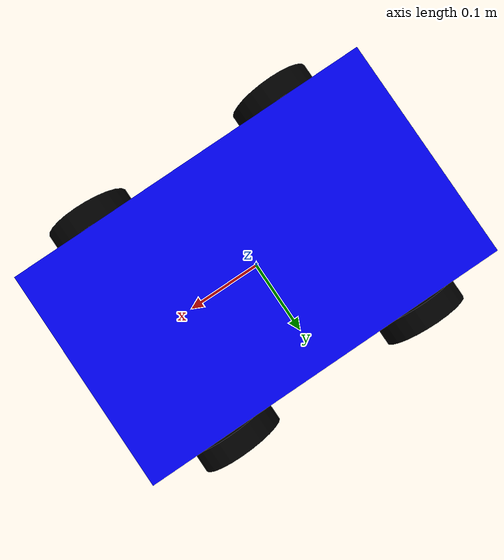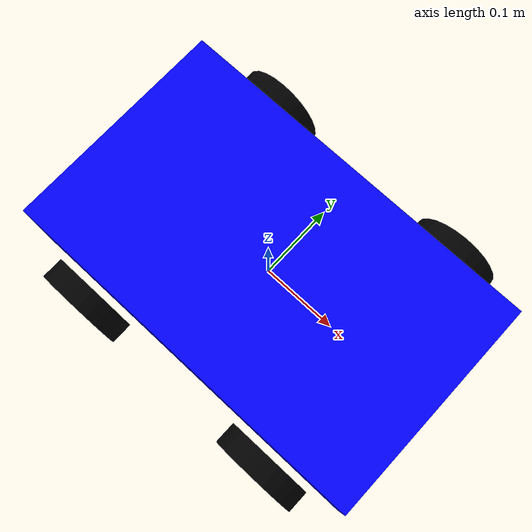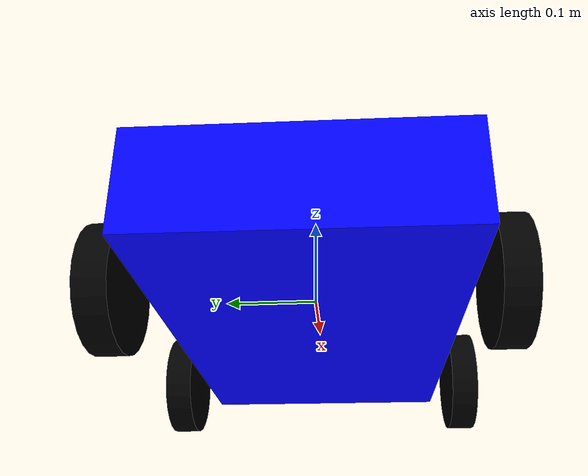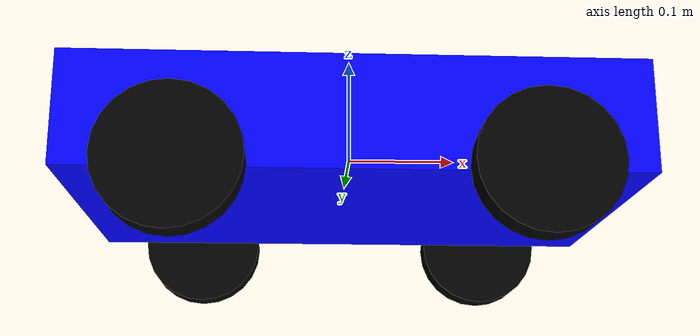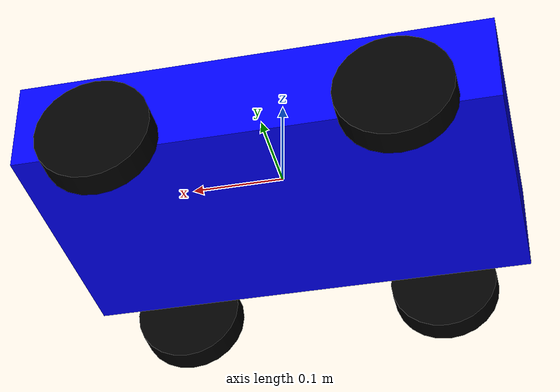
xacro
<?xml version="1.0"?>
<robot name="mobile_robot" xmlns:xacro="http://ros.org/wiki/xacro">

  <!-- Define robot constants -->
  <xacro:property name="width" value="0.3"/>
  <xacro:property name="length" value="0.5"/>
  <xacro:property name="height" value="0.1"/>
  <xacro:property name="wheel_radius" value="0.06"/>
  <xacro:property name="wheel_width" value="0.03"/>
  <xacro:property name="wheel_separation" value="0.35"/>
  <xacro:property name="wheel_base" value="0.3"/> <!-- Distance between front and rear axle -->

  <!-- Base Link -->
  <link name="base_link">
    <visual>
      <geometry>
        <box size="${length} ${width} ${height}"/>
      </geometry>
      <material name="blue">
        <color rgba="0 0 1 1"/>
      </material>
    </visual>
    <collision>
      <geometry>
        <box size="${length} ${width} ${height}"/>
      </geometry>
    </collision>
    <inertial>
      <mass value="2.0"/>
      <inertia ixx="0.02" ixy="0.0" ixz="0.0" iyy="0.02" iyz="0.0" izz="0.02"/>
    </inertial>
  </link>

  <!-- Wheel Macro -->
  <xacro:macro name="wheel" params="prefix x_reflect y_reflect">
    <link name="${prefix}_wheel">
      <visual>
        <geometry>
          <cylinder radius="${wheel_radius}" length="${wheel_width}"/>
        </geometry>
        <material name="black">
          <color rgba="0 0 0 1"/>
        </material>
      </visual>
      <collision>
        <geometry>
          <cylinder radius="${wheel_radius}" length="${wheel_width}"/>
        </geometry>
      </collision>
      <inertial>
        <mass value="0.5"/>
        <inertia ixx="0.001" ixy="0.0" ixz="0.0" iyy="0.001" iyz="0.0" izz="0.001"/>
      </inertial>
    </link>

    <joint name="${prefix}_wheel_joint" type="continuous">
      <parent link="base_link"/>
      <child link="${prefix}_wheel"/>
      <origin xyz="${x_reflect * wheel_base/2} ${y_reflect * wheel_separation/2} -${height/2}" rpy="-1.5707 0 0"/>
      <axis xyz="0 0 1"/>
    </joint>

    <gazebo reference="${prefix}_wheel">
      <material>Gazebo/Black</material>
    </gazebo>
  </xacro:macro>

  <!-- Instantiate 4 Wheels -->
  <xacro:wheel prefix="front_left" x_reflect="1" y_reflect="1"/>
  <xacro:wheel prefix="front_right" x_reflect="1" y_reflect="-1"/>
  <xacro:wheel prefix="rear_left" x_reflect="-1" y_reflect="1"/>
  <xacro:wheel prefix="rear_right" x_reflect="-1" y_reflect="-1"/>

  <gazebo reference="base_link">
    <material>Gazebo/Blue</material>
  </gazebo>

  <!-- Skid Steer Drive Plugin -->
  <gazebo>
    <plugin name="diff_drive" filename="libgazebo_ros_diff_drive.so">
      <ros>
        <namespace>/</namespace>
      </ros>
      <update_rate>100.0</update_rate>
      <num_wheel_pairs>2</num_wheel_pairs>

      <!-- wheels -->
      <left_joint>front_left_wheel_joint</left_joint>
      <left_joint>rear_left_wheel_joint</left_joint>
      <right_joint>front_right_wheel_joint</right_joint>
      <right_joint>rear_right_wheel_joint</right_joint>

      <wheel_separation>${wheel_separation}</wheel_separation>
      <wheel_diameter>${wheel_radius * 2}</wheel_diameter>
      <max_wheel_torque>20</max_wheel_torque>
      <max_wheel_acceleration>1.0</max_wheel_acceleration>

      <command_topic>cmd_vel</command_topic>
      <odometry_topic>odom</odometry_topic>
      <odometry_frame>odom</odometry_frame>
      <robot_base_frame>base_link</robot_base_frame>

      <publish_odom>true</publish_odom>
      <publish_odom_tf>true</publish_odom_tf>
      <publish_wheel_tf>true</publish_wheel_tf>
    </plugin>
  </gazebo>

</robot>
